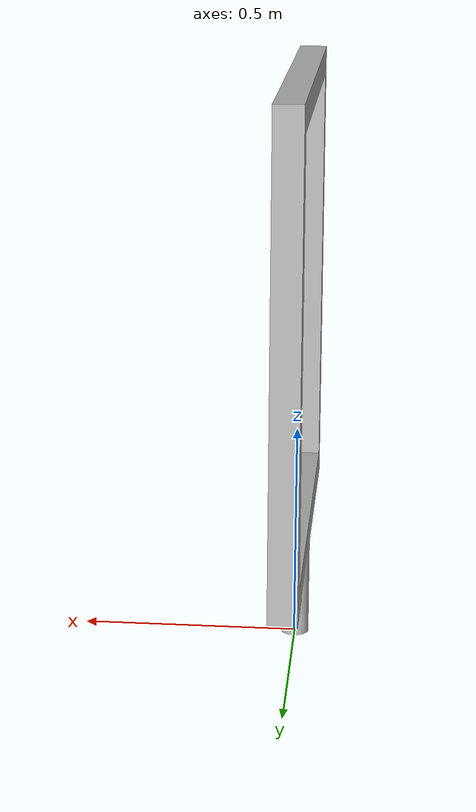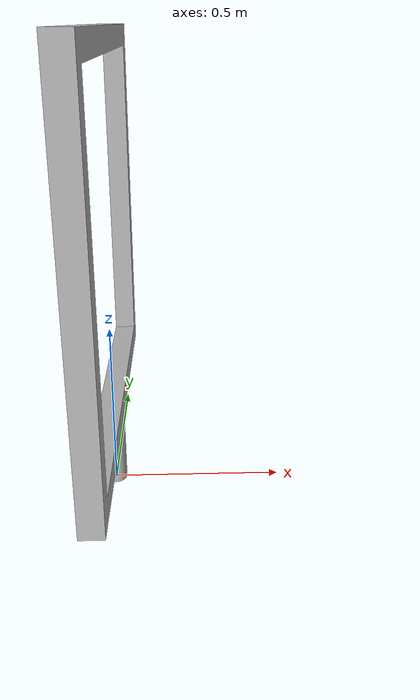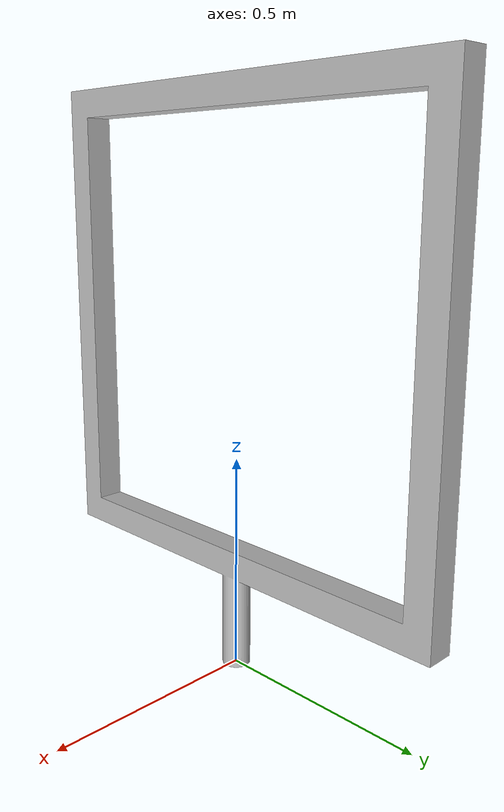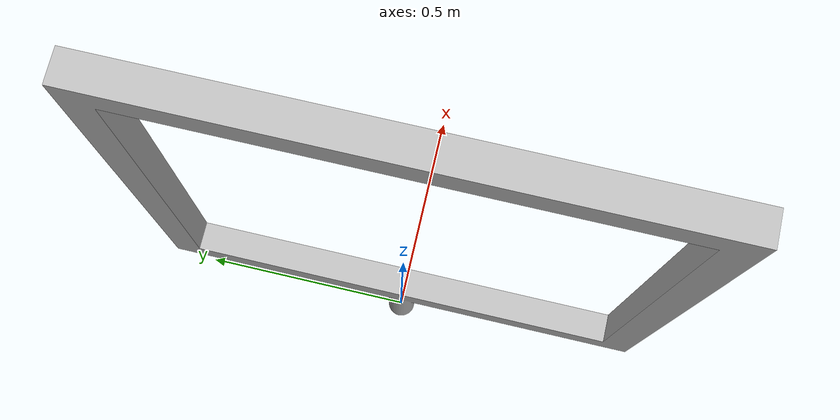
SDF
<?xml version="1.0"?>
<sdf version="1.5">
    <model name="frame_1_2">
        <static>true</static>
        <link name="link">
            <collision name="collision1">
                <pose>0 0 0 0 0 0</pose>
                <geometry>
                    <mesh>
                        <uri>model://frame_1.2/meshes/frame_1_2.dae</uri>
                    </mesh>
                </geometry>
            </collision>
            <visual name="visual1">

              <pose>0 0 0 0 0 0</pose>
              <geometry>
              <mesh>
                 <uri>model://frame_1.2/meshes/frame_1_2.dae</uri>
              </mesh>
              </geometry>
            </visual>
        </link>
    </model>
</sdf>
